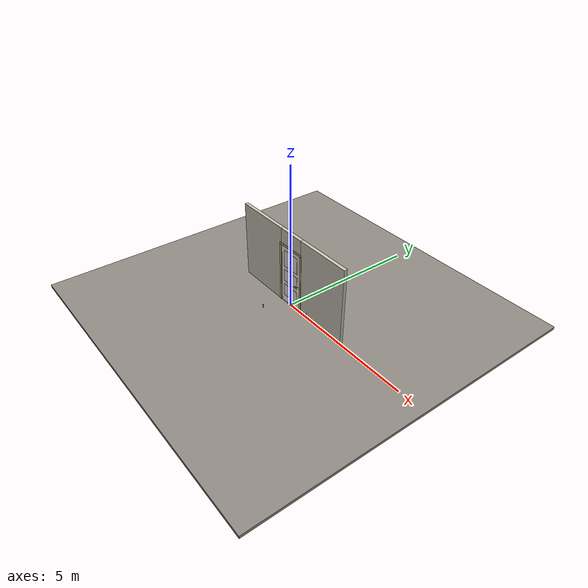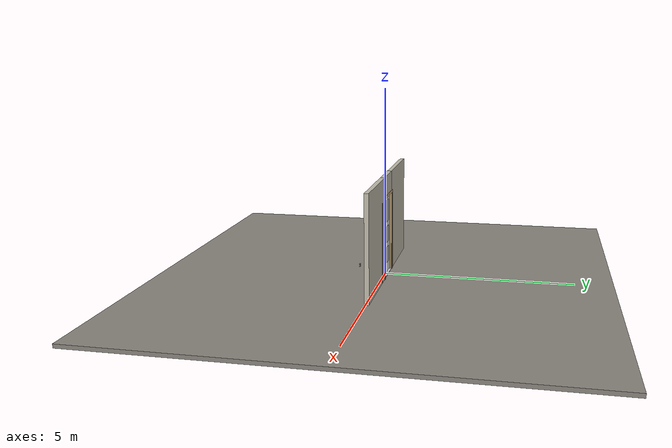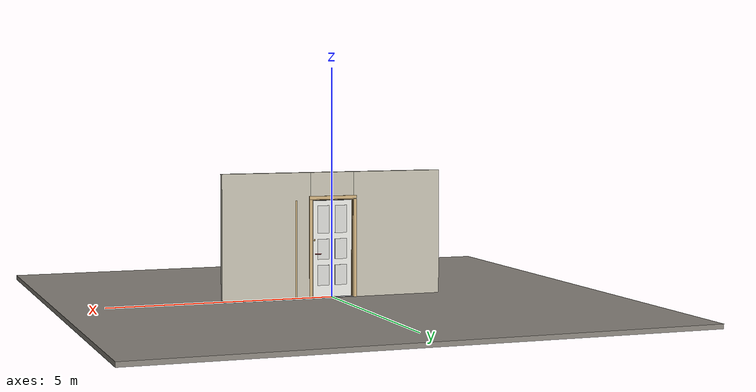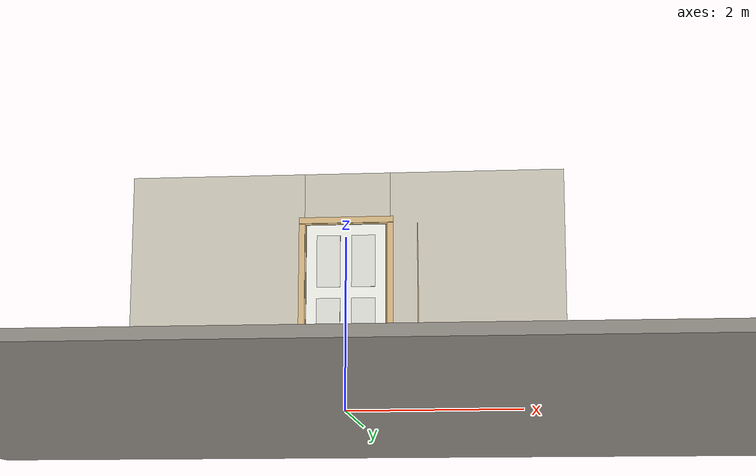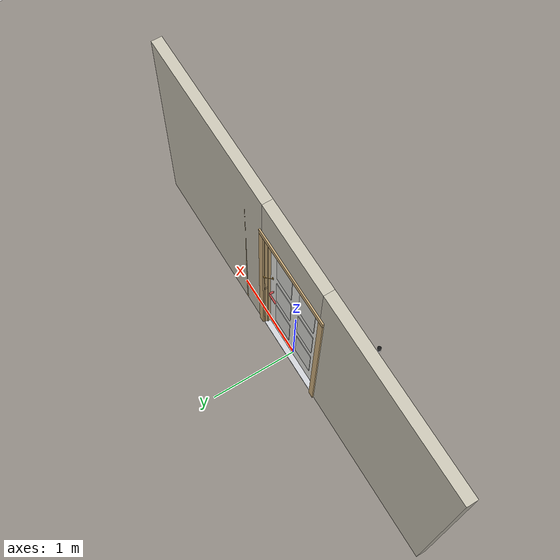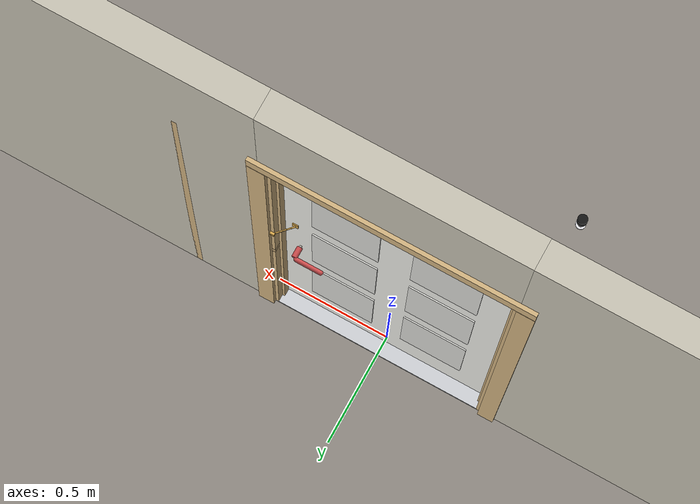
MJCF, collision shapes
<?xml version="1.0" ?>
<mujoco model="db0781_swing_single_full">
  <compiler angle="radian" meshdir="../../hardware" texturedir="../../textures" autolimits="true" inertiafromgeom="false"/>
  <option timestep="0.002" integrator="implicitfast" cone="elliptic" impratio="10" noslip_iterations="3">
    <flag multiccd="enable"/>
  </option>
  <size memory="16M"/>
  <default>
    <geom condim="4" solref="0.005 1" solimp="0.95 0.99 0.001"/>
    <joint solreflimit="0.005 1" solimplimit="0.95 0.99 0.001"/>
    <tendon solreflimit="0.005 1"/>
    <equality solref="0.002 1"/>
  </default>
  <visual>
    <headlight ambient="0.4 0.4 0.4" diffuse="0.7 0.7 0.7" specular="0.2 0.2 0.2"/>
    <quality shadowsize="4096"/>
    <map znear="0.01" zfar="60"/>
  </visual>
  <asset>
    <mesh name="hinge_e22b26c0c1" file="hinge_e22b26c0c1.obj"/>
    <mesh name="hinge_jamb_e1d088f8dc" file="hinge_jamb_e1d088f8dc.obj"/>
    <mesh name="house_numbers_ad0a8e8be0" file="house_numbers_ad0a8e8be0.obj"/>
    <mesh name="lever_9f02b544cf" file="lever_9f02b544cf.obj"/>
    <material name="mat_floor" rgba="0.55 0.53 0.5 1" specular="0.2" shininess="0.15" reflectance="0"/>
    <material name="mat_wall" rgba="0.78 0.76 0.7 1" specular="0.2" shininess="0.1" reflectance="0"/>
    <material name="mat_leaf" rgba="0.93 0.93 0.91 1" specular="0.23" shininess="0.63" reflectance="0.02"/>
    <material name="mat_leaf_panel" rgba="0.856 0.856 0.837 1" specular="0.23" shininess="0.63" reflectance="0.02"/>
    <material name="mat_hinge" rgba="0.65 0.66 0.68 1" specular="0.74" shininess="0.5" reflectance="0.36"/>
    <material name="mat_op_nickel_satin" rgba="0.72 0.7 0.66 1" specular="0.8" shininess="0.65" reflectance="0.4"/>
    <material name="mat_trim" rgba="0.85 0.66 0.3 1" specular="0.8" shininess="0.75" reflectance="0.4"/>
    <material name="mat_bolt" rgba="0.85 0.66 0.3 1" specular="0.8" shininess="0.75" reflectance="0.4"/>
    <material name="mat_chain" rgba="0.85 0.66 0.3 1" specular="0.8" shininess="0.75" reflectance="0.4"/>
    <material name="mat_frame" rgba="0.82 0.7 0.5 1" specular="0.2" shininess="0.45" reflectance="0"/>
    <material name="mat_seal" rgba="0.1 0.1 0.1 1" specular="0.2" shininess="0.1" reflectance="0"/>
    <material name="mat_threshold" rgba="0.8 0.81 0.83 1" specular="0.8" shininess="0.6" reflectance="0.4"/>
    <material name="mat_numbers" rgba="0.05 0.05 0.05 1" specular="0.38" shininess="0.3" reflectance="0.12"/>
    <material name="mat_sidelite" rgba="0.85 0.92 0.95 0.25" specular="0.2" shininess="0.95" reflectance="0.1"/>
    <material name="mat_bumper_stop" rgba="0.08 0.08 0.08 1" specular="0.2" shininess="0.1" reflectance="0"/>
    <material name="mat_stop_base" rgba="0.9 0.9 0.92 1" specular="0.8" shininess="0.9" reflectance="0.4"/>
    <texture name="skybox" type="skybox" builtin="gradient" rgb1="0.6 0.7 0.85" rgb2="0.9 0.92 0.95" width="256" height="256"/>
  </asset>
  <worldbody>
    <light name="sun" pos="1.5 -2.5 4" dir="-0.3 0.5 -0.8" directional="true" diffuse="0.8 0.8 0.8" specular="0.3 0.3 0.3" castshadow="true"/>
    <light name="fill" pos="-1.5 2.5 3" dir="0.3 -0.5 -0.7" directional="true" diffuse="0.35 0.35 0.4" castshadow="false"/>
    <camera name="robot_view" pos="0 -2.609312 1.812087" xyaxes="1 0 0 0 0.26963 0.962964" fovy="52"/>
    <camera name="far_view" pos="0 2.666313 1.812087" xyaxes="-1 0 0 0 -0.26963 0.962964" fovy="52"/>
    <camera name="iso" pos="2.004737 -2.187262 2.234138" xyaxes="0.741536 0.670913 0 -0.242917 0.268487 0.932151" fovy="46"/>
    <camera name="detail_handle" pos="0.4665 -0.877 1.245" xyaxes="0.97561 0.219512 0 -0.070934 0.315262 0.94635" fovy="38"/>
    <geom name="floor" type="box" size="6 6 0.05" pos="0 0 -0.05" material="mat_floor" group="0" contype="1" conaffinity="1" friction="0.8 0.005 0.0001" density="2400"/>
    <geom name="wall_left" type="box" size="1.01025 0.0575 1.3735" pos="-1.48975 0.0285 1.3735" material="mat_wall" group="0" contype="1" conaffinity="1" friction="0.6 0.005 0.0001" density="800"/>
    <geom name="wall_right" type="box" size="0.99525 0.0575 1.3735" pos="1.50475 0.0285 1.3735" material="mat_wall" group="0" contype="1" conaffinity="1" friction="0.6 0.005 0.0001" density="800"/>
    <geom name="wall_header" type="box" size="0.4945 0.0575 0.2755" pos="0.015 0.0285 2.4715" material="mat_wall" group="0" contype="1" conaffinity="1" friction="0.6 0.005 0.0001" density="800"/>
    <geom name="hinge_0_jamb" type="mesh" mesh="hinge_jamb_e1d088f8dc" pos="-0.4575 -0.029 0.267" material="mat_hinge" group="1" contype="0" conaffinity="0" density="7850"/>
    <geom name="hinge_1_jamb" type="mesh" mesh="hinge_jamb_e1d088f8dc" pos="-0.4575 -0.029 1.08" material="mat_hinge" group="1" contype="0" conaffinity="0" density="7850"/>
    <geom name="hinge_2_jamb" type="mesh" mesh="hinge_jamb_e1d088f8dc" pos="-0.4575 -0.029 1.963" material="mat_hinge" group="1" contype="0" conaffinity="0" density="7850"/>
    <geom name="leaf_chain_track" type="box" size="0.035 0.005 0.01" pos="0.4915 0.091 1.265" material="mat_chain" group="1" contype="0" conaffinity="0" density="8500"/>
    <geom name="jamb_hinge" type="box" size="0.0095 0.0575 1.0735" pos="-0.47 0.0285 1.0735" material="mat_frame" group="0" contype="1" conaffinity="1" friction="0.6 0.005 0.0001" density="400"/>
    <geom name="strike_965_wall_n" type="box" size="0.0245 0.03825 0.0183" pos="0.485 0.04775 0.965" material="mat_frame" group="0" contype="1" conaffinity="1" friction="0.6 0.005 0.0001" density="400"/>
    <geom name="strike_965_wall_p" type="box" size="0.0245 0.008 0.0183" pos="0.485 -0.0175 0.965" material="mat_frame" group="0" contype="1" conaffinity="1" friction="0.6 0.005 0.0001" density="400"/>
    <geom name="strike_965_ramp" type="box" size="0.0245 0.018028 0.0183" pos="0.490885 -0.02691 0.965" quat="0.957092 0 0 0.289784" material="mat_frame" group="0" contype="1" conaffinity="1" friction="0.12 0.005 0.0001" density="400"/>
    <geom name="strike_965_back" type="box" size="0.013 0.0095 0.0183" pos="0.4965 0 0.965" material="mat_frame" group="0" contype="1" conaffinity="1" friction="0.6 0.005 0.0001" density="400"/>
    <geom name="jamb_strike_0" type="box" size="0.0245 0.0575 0.47335" pos="0.485 0.0285 0.47335" material="mat_frame" group="0" contype="1" conaffinity="1" friction="0.6 0.005 0.0001" density="400"/>
    <geom name="jamb_strike_1" type="box" size="0.0245 0.0575 0.58185" pos="0.485 0.0285 1.56515" material="mat_frame" group="0" contype="1" conaffinity="1" friction="0.6 0.005 0.0001" density="400"/>
    <geom name="jamb_head" type="box" size="0.4945 0.0575 0.0095" pos="0.015 0.0285 2.1565" material="mat_frame" group="0" contype="1" conaffinity="1" friction="0.6 0.005 0.0001" density="400"/>
    <geom name="head_stud" type="box" size="0.4945 0.0575 0.015" pos="0.015 0.0285 2.181" material="mat_wall" group="0" contype="1" conaffinity="1" friction="0.6 0.005 0.0001" density="500"/>
    <geom name="stop_hinge" type="box" size="0.0055 0.016 1.0735" pos="-0.455 0.0385 1.0735" material="mat_frame" group="0" contype="1" conaffinity="1" friction="0.6 0.005 0.0001" density="400"/>
    <geom name="stop_strike" type="box" size="0.0055 0.016 1.0735" pos="0.455 0.0385 1.0735" material="mat_frame" group="0" contype="1" conaffinity="1" friction="0.6 0.005 0.0001" density="400"/>
    <geom name="stop_head" type="box" size="0.4605 0.016 0.0055" pos="0 0.0385 2.1415" material="mat_frame" group="0" contype="1" conaffinity="1" friction="0.6 0.005 0.0001" density="400"/>
    <geom name="seal_hinge" type="box" size="0.004 0.003 1.0735" pos="-0.4575 0.025 1.0735" material="mat_seal" group="1" contype="0" conaffinity="0" density="1100"/>
    <geom name="seal_strike" type="box" size="0.004 0.003 1.0735" pos="0.4575 0.025 1.0735" material="mat_seal" group="1" contype="0" conaffinity="0" density="1100"/>
    <geom name="seal_head" type="box" size="0.4405 0.003 0.008" pos="0 0.025 2.135" material="mat_seal" group="1" contype="0" conaffinity="0" density="1100"/>
    <geom name="casing_l_n" type="box" size="0.035 0.008 1.083" pos="-0.5095 -0.037 1.0735" material="mat_frame" group="2" contype="0" conaffinity="0" density="400"/>
    <geom name="casing_r_n" type="box" size="0.035 0.008 1.083" pos="0.5095 -0.037 1.0735" material="mat_frame" group="2" contype="0" conaffinity="0" density="400"/>
    <geom name="casing_h_n" type="box" size="0.5445 0.008 0.035" pos="0 -0.037 2.196" material="mat_frame" group="2" contype="0" conaffinity="0" density="400"/>
    <geom name="casing_l_p" type="box" size="0.035 0.008 1.083" pos="-0.5095 0.094 1.0735" material="mat_frame" group="2" contype="0" conaffinity="0" density="400"/>
    <geom name="casing_r_p" type="box" size="0.035 0.008 1.083" pos="0.5095 0.094 1.0735" material="mat_frame" group="2" contype="0" conaffinity="0" density="400"/>
    <geom name="casing_h_p" type="box" size="0.5445 0.008 0.035" pos="0 0.094 2.196" material="mat_frame" group="2" contype="0" conaffinity="0" density="400"/>
    <geom name="threshold" type="box" size="0.4795 0.0575 0.0065" pos="0 0.0285 0.0065" material="mat_threshold" group="0" contype="1" conaffinity="1" friction="0.5 0.005 0.0001" density="2700"/>
    <geom name="sidelite_glass" type="box" size="0.15 0.003 1.0235" pos="0.6705 0 1.0735" material="mat_sidelite" group="0" contype="1" conaffinity="1" friction="0.6 0.005 0.0001" density="2500"/>
    <geom name="sidelite_frame" type="box" size="0.02 0.0575 1.0735" pos="0.8405 0.0285 1.0735" material="mat_frame" group="0" contype="1" conaffinity="1" friction="0.6 0.005 0.0001" density="600"/>
    <geom name="door_stop_base" type="cylinder" size="0.022 0.003" pos="-0.4735 -0.8059 0.003" material="mat_stop_base" group="0" contype="1" conaffinity="1" friction="0.6 0.005 0.0001" density="7850"/>
    <geom name="door_stop_post" type="cylinder" size="0.012 0.0255" pos="-0.4735 -0.8059 0.0315" material="mat_stop_base" group="0" contype="1" conaffinity="1" friction="0.6 0.005 0.0001" density="7850"/>
    <geom name="door_stop_bumper" type="cylinder" size="0.022 0.02" pos="-0.4735 -0.8059 0.077" material="mat_bumper_stop" group="0" contype="1" conaffinity="1" friction="0.6 0.005 0.0001" density="1100"/>
    <site name="approach_point" pos="0 -1.5 0" quat="1 0 0 0" size="0.05" rgba="0.2 0.9 0.2 0.5" group="4"/>
    <site name="goal_point" pos="0 1.5 0" quat="1 0 0 0" size="0.05" rgba="0.2 0.9 0.2 0.5" group="4"/>
    <site name="door_plane_center" pos="0 0 1.0735" quat="1 0 0 0" size="0.02" rgba="0.2 0.9 0.2 0.5" group="4"/>
    <body name="leaf" pos="-0.4605 0 0">
      <inertial pos="0.448809 -0.000492 1.083924" mass="26.940837" quat="0.498989 0.500848 -0.499235 0.500924" diaginertia="1.981323781 10.21448471 12.186227589"/>
      <joint name="leaf_hinge" type="hinge" axis="0 0 -1" pos="0.003 -0.029 0" limited="true" range="0 0.098439" solreflimit="0.02 1" damping="0.318966" frictionloss="1.185438" armature="0.02"/>
      <geom name="leaf_slab" type="box" size="0.457 0.022 1.063" pos="0.46 0 1.08" material="mat_leaf" group="0" contype="1" conaffinity="1" friction="0.4 0.005 0.0001" density="1"/>
      <geom name="leaf_panel_0_n" type="box" size="0.13573 0.003 0.220876" pos="0.25927 -0.025 0.491736" material="mat_leaf_panel" group="1" contype="0" conaffinity="0" density="1"/>
      <geom name="leaf_panel_0_p" type="box" size="0.13573 0.003 0.220876" pos="0.25927 0.025 0.491736" material="mat_leaf_panel" group="1" contype="0" conaffinity="0" density="1"/>
      <geom name="leaf_panel_1_n" type="box" size="0.13573 0.003 0.220876" pos="0.66073 -0.025 0.491736" material="mat_leaf_panel" group="1" contype="0" conaffinity="0" density="1"/>
      <geom name="leaf_panel_1_p" type="box" size="0.13573 0.003 0.220876" pos="0.66073 0.025 0.491736" material="mat_leaf_panel" group="1" contype="0" conaffinity="0" density="1"/>
      <geom name="leaf_panel_2_n" type="box" size="0.13573 0.003 0.220876" pos="0.25927 -0.025 1.063488" material="mat_leaf_panel" group="1" contype="0" conaffinity="0" density="1"/>
      <geom name="leaf_panel_2_p" type="box" size="0.13573 0.003 0.220876" pos="0.25927 0.025 1.063488" material="mat_leaf_panel" group="1" contype="0" conaffinity="0" density="1"/>
      <geom name="leaf_panel_3_n" type="box" size="0.13573 0.003 0.220876" pos="0.66073 -0.025 1.063488" material="mat_leaf_panel" group="1" contype="0" conaffinity="0" density="1"/>
      <geom name="leaf_panel_3_p" type="box" size="0.13573 0.003 0.220876" pos="0.66073 0.025 1.063488" material="mat_leaf_panel" group="1" contype="0" conaffinity="0" density="1"/>
      <geom name="leaf_panel_4_n" type="box" size="0.13573 0.003 0.301168" pos="0.25927 -0.025 1.715532" material="mat_leaf_panel" group="1" contype="0" conaffinity="0" density="1"/>
      <geom name="leaf_panel_4_p" type="box" size="0.13573 0.003 0.301168" pos="0.25927 0.025 1.715532" material="mat_leaf_panel" group="1" contype="0" conaffinity="0" density="1"/>
      <geom name="leaf_panel_5_n" type="box" size="0.13573 0.003 0.301168" pos="0.66073 -0.025 1.715532" material="mat_leaf_panel" group="1" contype="0" conaffinity="0" density="1"/>
      <geom name="leaf_panel_5_p" type="box" size="0.13573 0.003 0.301168" pos="0.66073 0.025 1.715532" material="mat_leaf_panel" group="1" contype="0" conaffinity="0" density="1"/>
      <geom name="hinge_0" type="mesh" mesh="hinge_e22b26c0c1" pos="0.003 -0.029 0.267" material="mat_hinge" group="1" contype="0" conaffinity="0" density="7850"/>
      <geom name="hinge_1" type="mesh" mesh="hinge_e22b26c0c1" pos="0.003 -0.029 1.08" material="mat_hinge" group="1" contype="0" conaffinity="0" density="7850"/>
      <geom name="hinge_2" type="mesh" mesh="hinge_e22b26c0c1" pos="0.003 -0.029 1.963" material="mat_hinge" group="1" contype="0" conaffinity="0" density="7850"/>
      <geom name="leaf_latch_bolt_faceplate" type="box" size="0.0006 0.014 0.0283" pos="0.9164 0 0.965" material="mat_bolt" group="1" contype="0" conaffinity="0" density="8500"/>
      <geom name="leaf_chain_plate" type="box" size="0.012 0.002 0.02" pos="0.867 0.024 1.265" material="mat_chain" group="1" contype="0" conaffinity="0" density="8500"/>
      <geom name="leaf_chain_0" type="capsule" size="0.003 0.008317" pos="0.872167 0.035083 1.264" quat="0.657011 -0.528723 0.53739 0" material="mat_chain" group="1" contype="0" conaffinity="0" density="8500"/>
      <geom name="leaf_chain_1" type="capsule" size="0.003 0.008317" pos="0.8825 0.04525 1.262" quat="0.657011 -0.528723 0.53739 0" material="mat_chain" group="1" contype="0" conaffinity="0" density="8500"/>
      <geom name="leaf_chain_2" type="capsule" size="0.003 0.008317" pos="0.892833 0.055417 1.26" quat="0.657011 -0.528723 0.53739 0" material="mat_chain" group="1" contype="0" conaffinity="0" density="8500"/>
      <geom name="leaf_chain_3" type="capsule" size="0.003 0.008317" pos="0.903167 0.065583 1.258" quat="0.657011 -0.528723 0.53739 0" material="mat_chain" group="1" contype="0" conaffinity="0" density="8500"/>
      <geom name="leaf_chain_4" type="capsule" size="0.003 0.008317" pos="0.9135 0.07575 1.256" quat="0.657011 -0.528723 0.53739 0" material="mat_chain" group="1" contype="0" conaffinity="0" density="8500"/>
      <geom name="leaf_chain_5" type="capsule" size="0.003 0.008317" pos="0.923833 0.085917 1.254" quat="0.657011 -0.528723 0.53739 0" material="mat_chain" group="1" contype="0" conaffinity="0" density="8500"/>
      <geom name="house_numbers" type="mesh" mesh="house_numbers_ad0a8e8be0" pos="0.46 -0.022 1.793" quat="0.707107 0.707107 0 0" material="mat_numbers" group="2" contype="0" conaffinity="0" density="1000"/>
      <site name="leaf_edge_mid" pos="0.917 0 1.063" quat="1 0 0 0" size="0.02" rgba="0.2 0.9 0.2 0.5" group="4"/>
      <body name="leaf_handle" pos="0.847 0 0.965">
        <inertial pos="-0.028544 0 0" mass="0.978187" quat="0 0.707107 0.707107 0" diaginertia="0.001772047 0.003604455 0.005198299"/>
        <joint name="leaf_handle_hinge" type="hinge" axis="0 -1 0" limited="true" range="0 0.96" damping="0.245624" frictionloss="0.048" stiffness="1.2" springref="-0.458333" armature="0.01"/>
        <geom name="leaf_handle_spindle" type="cylinder" size="0.006 0.03" pos="0 0 0" quat="0.707107 -0.707107 0 0" material="mat_op_nickel_satin" group="1" contype="0" conaffinity="0" density="7850"/>
        <geom name="leaf_handle_lever_n" type="mesh" mesh="lever_9f02b544cf" pos="0 -0.022 0" quat="0.707107 0.707107 0 0" material="mat_op_nickel_satin" group="1" contype="0" conaffinity="0" density="3000"/>
        <geom name="leaf_handle_lever_col_n" type="capsule" size="0.0095 0.053" pos="-0.0625 -0.077 0" quat="0.707107 0 -0.707107 0" material="mat_op_nickel_satin" group="3" contype="1" conaffinity="1" rgba="0.8 0.3 0.3 0.25" friction="0.7 0.01 0.0001" density="3000"/>
        <geom name="leaf_handle_hub_col_n" type="cylinder" size="0.012 0.022" pos="0 -0.052 0" quat="0.707107 -0.707107 0 0" material="mat_op_nickel_satin" group="3" contype="1" conaffinity="1" rgba="0.8 0.3 0.3 0.25" friction="0.6 0.005 0.0001" density="3000"/>
        <geom name="leaf_handle_lever_p" type="mesh" mesh="lever_9f02b544cf" pos="0 0.022 0" quat="-0.707107 0.707107 0 0" material="mat_op_nickel_satin" group="1" contype="0" conaffinity="0" density="3000"/>
        <geom name="leaf_handle_lever_col_p" type="capsule" size="0.0095 0.053" pos="-0.0625 0.077 0" quat="0.707107 0 -0.707107 0" material="mat_op_nickel_satin" group="3" contype="1" conaffinity="1" rgba="0.8 0.3 0.3 0.25" friction="0.7 0.01 0.0001" density="3000"/>
        <geom name="leaf_handle_hub_col_p" type="cylinder" size="0.012 0.022" pos="0 0.052 0" quat="0.707107 -0.707107 0 0" material="mat_op_nickel_satin" group="3" contype="1" conaffinity="1" rgba="0.8 0.3 0.3 0.25" friction="0.6 0.005 0.0001" density="3000"/>
        <site name="leaf_handle_grip_n" pos="-0.1 -0.077 0" quat="1 0 0 0" size="0.012" rgba="0.2 0.9 0.2 0.5" group="4"/>
        <site name="leaf_handle_grip_p" pos="-0.1 0.077 0" quat="1 0 0 0" size="0.012" rgba="0.2 0.9 0.2 0.5" group="4"/>
      </body>
      <body name="leaf_latch_bolt" pos="0.917 0 0.965">
        <inertial pos="-0.0055 0 0" mass="0.074627" quat="0.92388 -0.382683 0 0" diaginertia="0.000002271 0.000013255 0.000013255"/>
        <joint name="leaf_latch_bolt_slide" type="slide" axis="-1 0 0" limited="true" range="0 0.019" damping="2" frictionloss="0.3" stiffness="600" springref="-0.01" armature="0.1"/>
        <geom name="leaf_latch_bolt_capsule" type="capsule" size="0.008 0.0165" pos="-0.0055 0 0" quat="0.707107 0 0.707107 0" material="mat_bolt" group="0" contype="1" conaffinity="1" friction="0.2 0.005 0.0001" density="8500"/>
      </body>
    </body>
  </worldbody>
  <tendon>
    <fixed name="leaf_latch_bolt_coupling" limited="true" range="0 10">
      <joint joint="leaf_latch_bolt_slide" coef="1"/>
      <joint joint="leaf_handle_hinge" coef="-0.020879"/>
    </fixed>
  </tendon>
  <sensor>
    <jointpos name="leaf_hinge_pos" joint="leaf_hinge"/>
    <jointvel name="leaf_hinge_vel" joint="leaf_hinge"/>
    <jointpos name="leaf_handle_hinge_pos" joint="leaf_handle_hinge"/>
    <jointvel name="leaf_handle_hinge_vel" joint="leaf_handle_hinge"/>
    <jointpos name="leaf_latch_bolt_slide_pos" joint="leaf_latch_bolt_slide"/>
    <jointvel name="leaf_latch_bolt_slide_vel" joint="leaf_latch_bolt_slide"/>
  </sensor>
</mujoco>
